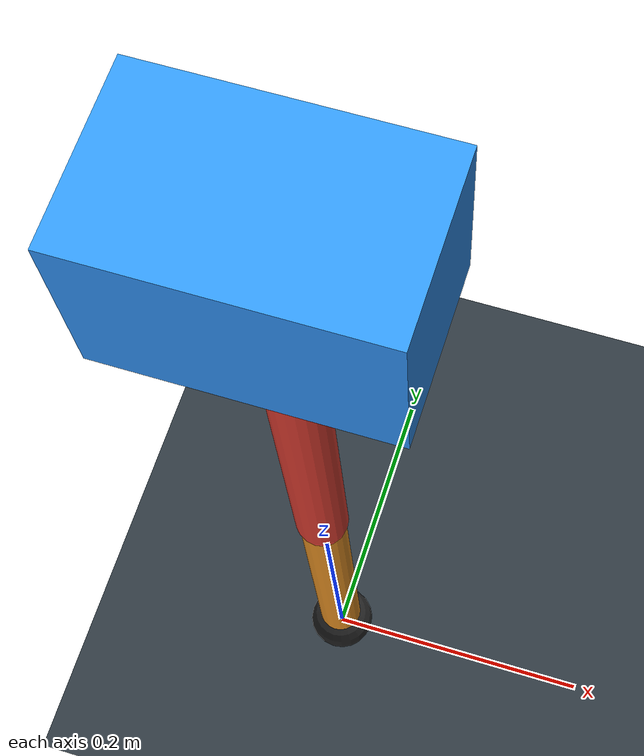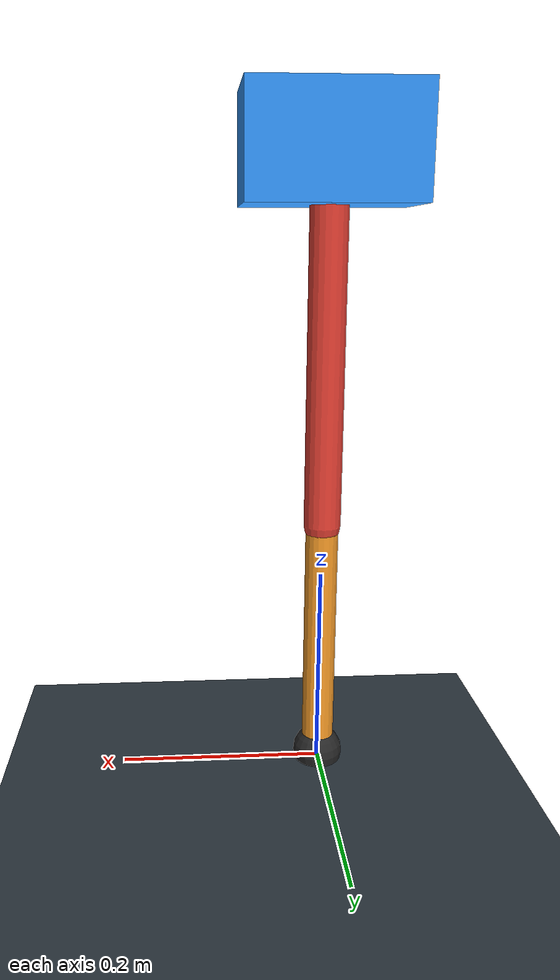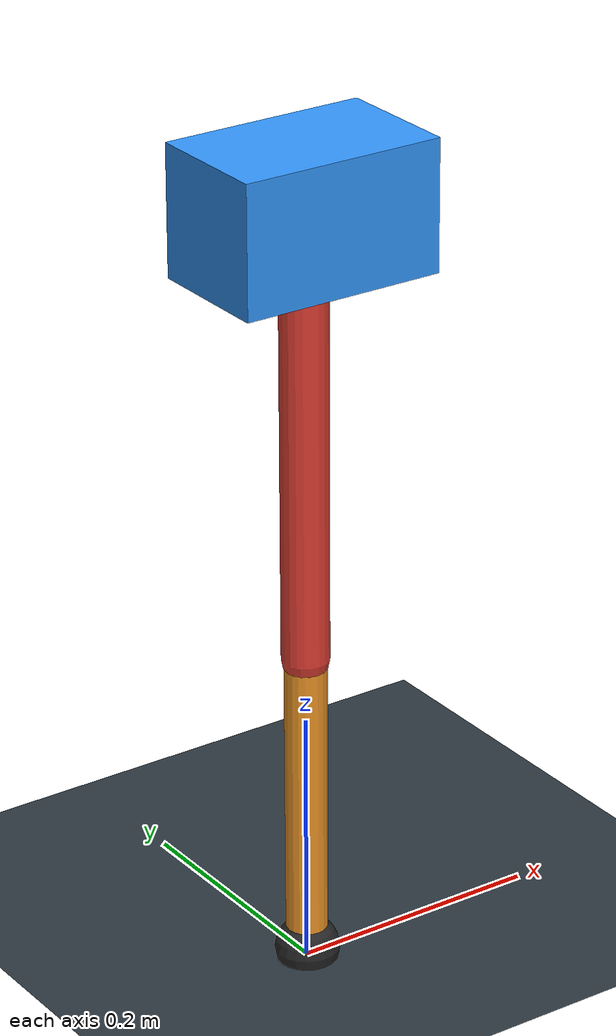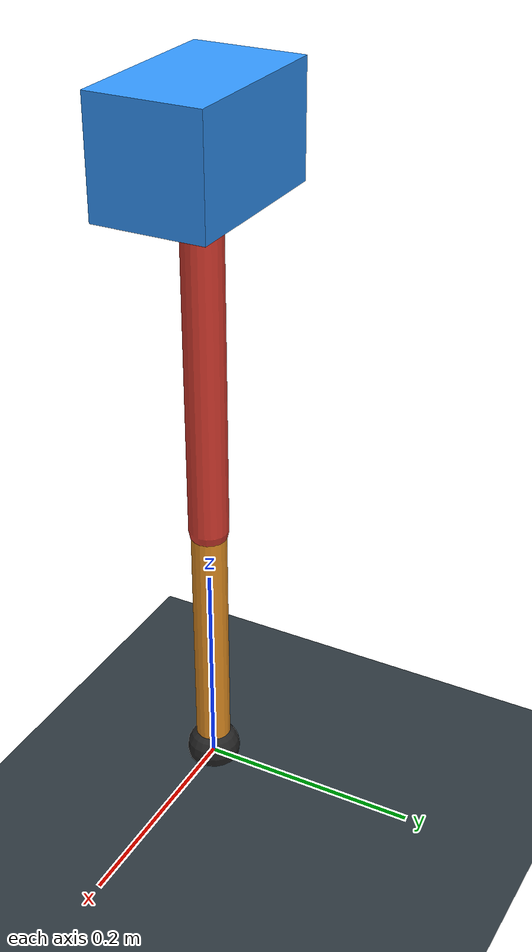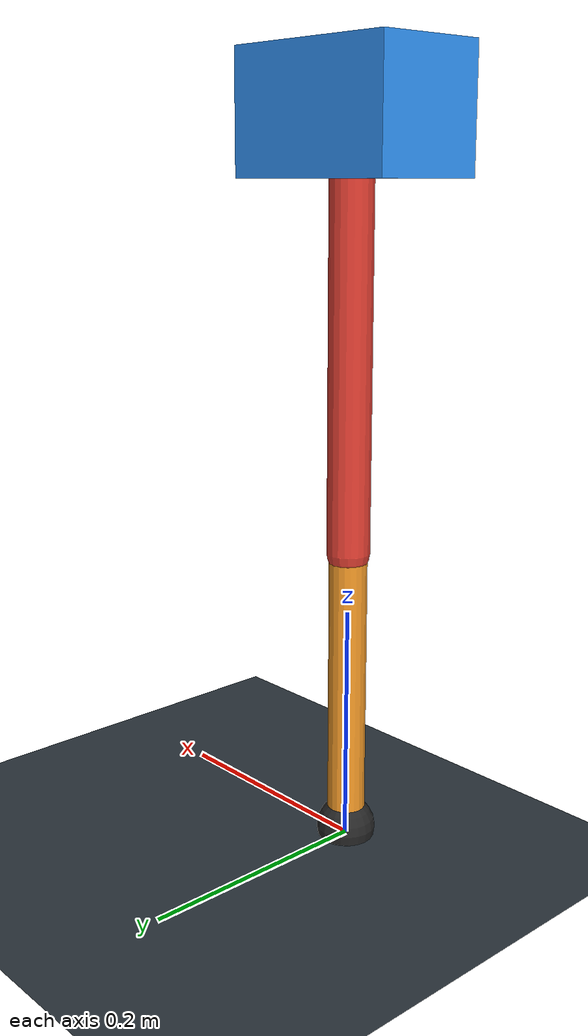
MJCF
<mujoco model="single_axis_two_bar">
  <compiler angle="radian" inertiafromgeom="true"/>
  <option timestep="0.001" integrator="implicitfast" gravity="0 0 -9.81"/>
  <default>
    <joint damping="0.08"/>
    <geom friction="1.2 0.01 0.0001" condim="3"/>
  </default>
  <worldbody>
    <geom name="floor" type="plane" size="5 5 0.1" rgba="0.18 0.22 0.25 1"/>
    <body name="carriage" pos="0 0 0.6016294135347774">
      <joint name="pole_slide" type="slide" axis="0 0 1"/>
      <geom name="payload" type="box" size="0.08 0.05 0.05" mass="2.4700259369066" rgba="0.2 0.6 1 1"/>
      <body name="thigh" pos="0 0 0">
        <joint name="hip" type="hinge" axis="0 1 0"/>
        <geom name="thigh_link" type="capsule" fromto="0 0 0 0 0 -0.3499340476383974" size="0.018" mass="0.24933263291283234" rgba="0.9 0.25 0.2 1"/>
        <body name="shank" pos="0 0 -0.3499340476383974">
          <joint name="knee" type="hinge" axis="0 1 0"/>
          <geom name="shank_link" type="capsule" fromto="0 0 0 0 0 -0.24452926528405347" size="0.016" mass="0.17423033268404806" rgba="0.95 0.6 0.15 1"/>
          <geom name="foot" type="sphere" pos="0 0 -0.24452926528405347" size="0.025" mass="0.03" rgba="0.15 0.15 0.15 1"/>
          <site name="toe" pos="0 0 -0.24452926528405347" size="0.008"/>
        </body>
      </body>
    </body>
  </worldbody>
  <actuator>
    <motor name="hip_motor" joint="hip" ctrlrange="-28.08093718911038 28.08093718911038"/>
    <motor name="knee_motor" joint="knee" ctrlrange="-104.61982930335441 104.61982930335441"/>
  </actuator>
</mujoco>
